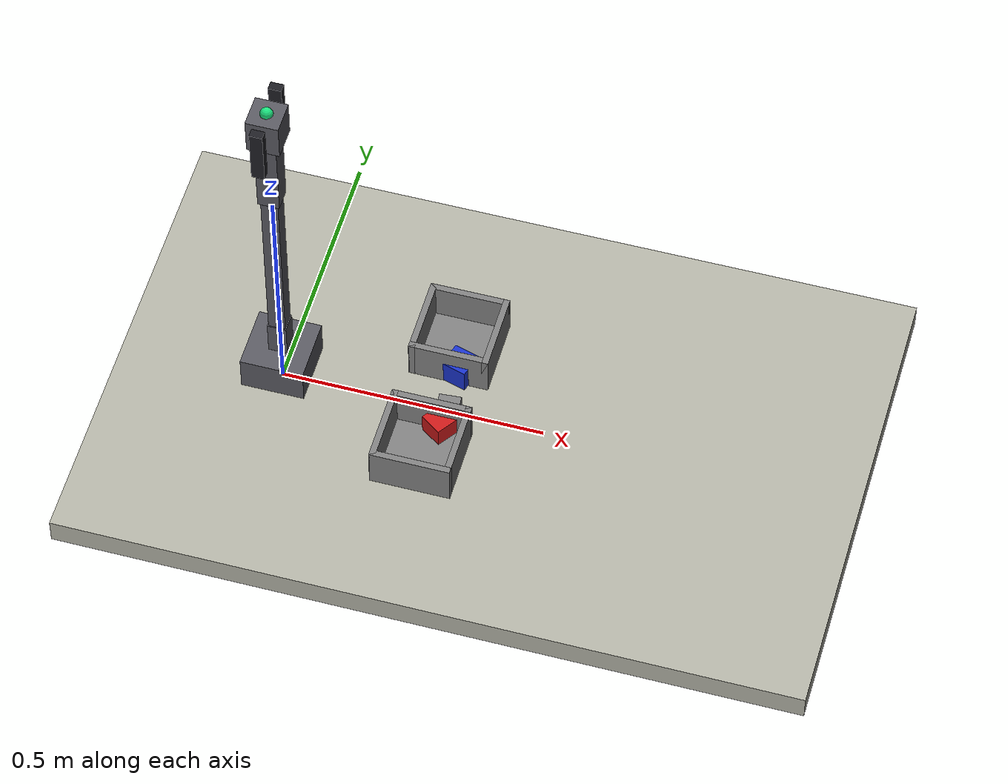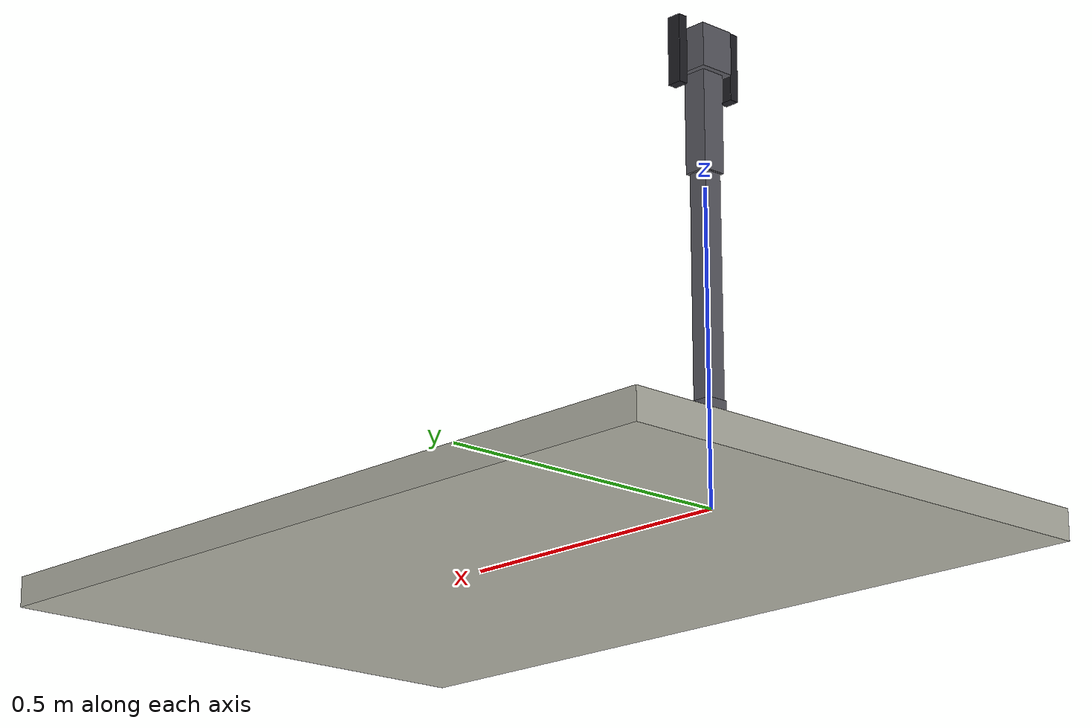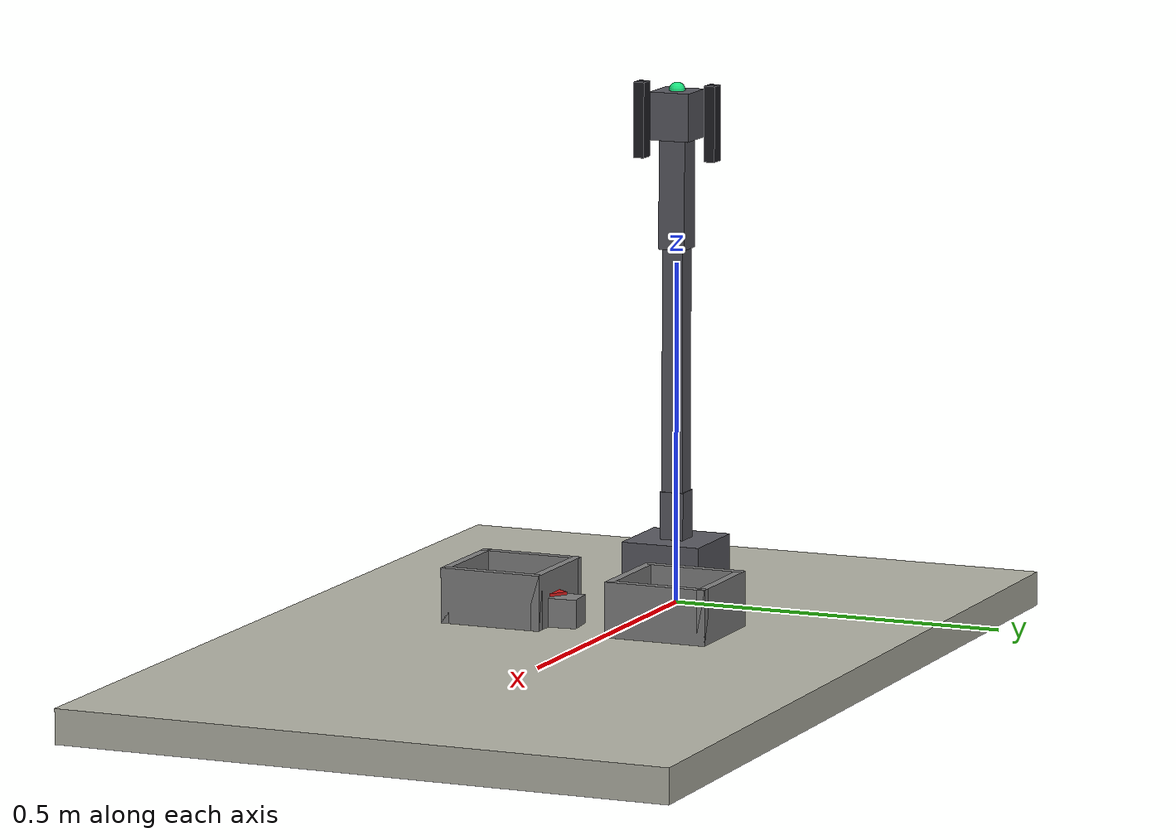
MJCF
<mujoco model="Autonomous reference tabletop arm regression_scene_task_req_a_tabletop_robot_arm_that_sorts_red_and_blue_blo_stress_000">
  <compiler angle="radian" coordinate="local" />
  <option timestep="0.002" gravity="0 0 -9.81" />
  <!-- scene_set_id=scenes_task_req_a_tabletop_robot_arm_that_sorts_red_and_blue_blo_regression scene_id=regression_scene_task_req_a_tabletop_robot_arm_that_sorts_red_and_blue_blo_stress_000 -->
  <default>
    <joint damping="0.8" armature="0.01" />
    <geom friction="1 0.1 0.01" />
  </default>
  <asset>
    <material name="mat_red" rgba="0.8 0.1 0.1 1" />
    <material name="mat_blue" rgba="0.1 0.2 0.8 1" />
    <material name="mat_gray" rgba="0.5 0.5 0.5 1" />
    <material name="mat_link" rgba="0.35 0.35 0.38 1" />
  </asset>
  <worldbody>
    <light name="key" pos="0 0 2" dir="0 0 -1" />
    <geom name="table" type="box" size="0.7 0.45 0.025" pos="0.4 0 0" rgba="0.7 0.7 0.65 1" />
    <body name="base_link" pos="0.0 0.0 0.025">
      <geom name="base_link_geom" type="box" size="0.06 0.06 0.035" pos="0 0 0.035" mass="0.45" material="mat_link" />
      <body name="upper_link" pos="0.0 0.0 0.07">
        <joint name="base_yaw" type="hinge" axis="0.0 0.0 1.0" pos="0 0 0" limited="true" range="-3.14 3.14" />
        <geom name="upper_link_geom" type="box" size="0.018 0.018 0.035" pos="0 0 0.035" mass="0.22" material="mat_link" />
        <body name="forearm_link" pos="0.0 0.0 0.07">
          <joint name="shoulder_pitch" type="hinge" axis="0.0 1.0 0.0" pos="0 0 0" limited="true" range="-1.57 1.57" />
          <geom name="forearm_link_geom" type="box" size="0.016 0.016 0.1785" pos="0 0 0.1785" mass="0.18" material="mat_link" />
          <body name="wrist_link" pos="0.0 0.0 0.357">
            <joint name="elbow_pitch" type="hinge" axis="0.0 1.0 0.0" pos="0 0 0" limited="true" range="-1.57 1.57" />
            <geom name="wrist_link_geom" type="box" size="0.02 0.02 0.08" pos="0 0 0.08" mass="0.035" material="mat_link" />
            <camera name="wrist_rgbd_camera" pos="0.03 0.0 0.04" xyaxes="0 -1 0 0 0 1" mode="fixed" user="0.0 0.0 0.0" />
            <body name="gripper_link" pos="0.0 0.0 0.16">
              <geom name="gripper_link_geom" type="box" size="0.03 0.03 0.035" pos="0 0 0.035" mass="0.04" material="mat_link" />
              <site name="ee_site" pos="0 0 0.07" size="0.012" rgba="0.1 0.9 0.5 1" />
              <site name="grasp_site" pos="0 0 0.015" size="0.01" rgba="1 0.7 0.1 1" />
              <body name="left_gripper_finger" pos="0 0.055 0.07">
                <joint name="left_gripper_slide" type="slide" axis="0 -1 0" limited="true" range="0 0.04" damping="2.0" />
                <geom name="left_gripper_pad" type="box" size="0.012 0.008 0.055" pos="0 0 -0.045" mass="0.025" rgba="0.12 0.12 0.14 1" friction="1.5 0.1 0.01" />
              </body>
              <body name="right_gripper_finger" pos="0 -0.055 0.07">
                <joint name="right_gripper_slide" type="slide" axis="0 1 0" limited="true" range="0 0.04" damping="2.0" />
                <geom name="right_gripper_pad" type="box" size="0.012 0.008 0.055" pos="0 0 -0.045" mass="0.025" rgba="0.12 0.12 0.14 1" friction="1.5 0.1 0.01" />
              </body>
            </body>
          </body>
        </body>
      </body>
    </body>
    <body name="obj_red_block" pos="0.3231 -0.0671 0.049" euler="0 0 0.9649">
      <freejoint name="free_red_block" />
      <geom name="red_block" type="box" size="0.023 0.023 0.023" mass="0.0649" friction="0.811 0.1 0.01" material="mat_red" />
    </body>
    <body name="obj_blue_block" pos="0.323 0.0677 0.0504" euler="0 0 -1.8511">
      <freejoint name="free_blue_block" />
      <geom name="blue_block" type="box" size="0.0244 0.0244 0.0244" mass="0.049" friction="0.869 0.1 0.01" material="mat_blue" />
    </body>
    <geom name="red_bin" type="box" size="0.07 0.07 0.004" pos="0.3045 -0.1273 0.029" material="mat_gray" />
    <geom name="red_bin_wall_px" type="box" size="0.006 0.07600000000000001 0.04" pos="0.3745 -0.1273 0.065" material="mat_gray" />
    <geom name="red_bin_wall_nx" type="box" size="0.006 0.07600000000000001 0.04" pos="0.2345 -0.1273 0.065" material="mat_gray" />
    <geom name="red_bin_wall_py" type="box" size="0.07600000000000001 0.006 0.04" pos="0.3045 -0.0573 0.065" material="mat_gray" />
    <geom name="red_bin_wall_ny" type="box" size="0.07600000000000001 0.006 0.04" pos="0.3045 -0.1973 0.065" material="mat_gray" />
    <geom name="blue_bin" type="box" size="0.07 0.07 0.004" pos="0.3049 0.1263 0.029" material="mat_gray" />
    <geom name="blue_bin_wall_px" type="box" size="0.006 0.07600000000000001 0.04" pos="0.3749 0.1263 0.065" material="mat_gray" />
    <geom name="blue_bin_wall_nx" type="box" size="0.006 0.07600000000000001 0.04" pos="0.2349 0.1263 0.065" material="mat_gray" />
    <geom name="blue_bin_wall_py" type="box" size="0.07600000000000001 0.006 0.04" pos="0.3049 0.1963 0.065" material="mat_gray" />
    <geom name="blue_bin_wall_ny" type="box" size="0.07600000000000001 0.006 0.04" pos="0.3049 0.0563 0.065" material="mat_gray" />
    <body name="obj_distractor_0_0" pos="0.3286 -0.0308 0.0468" euler="0 0 1.6546">
      <freejoint name="free_distractor_0_0" />
      <geom name="distractor_0_0" type="box" size="0.0208 0.0208 0.0208" mass="0.054" friction="0.948 0.1 0.01" material="mat_gray" />
    </body>
  </worldbody>
  <actuator>
    <motor name="base_yaw_motor" joint="base_yaw" gear="1" forcerange="-12.0 12.0" />
    <motor name="shoulder_pitch_motor" joint="shoulder_pitch" gear="1" forcerange="-12.0 12.0" />
    <motor name="elbow_pitch_motor" joint="elbow_pitch" gear="1" forcerange="-12.0 12.0" />
    <motor name="left_gripper_slide_motor" joint="left_gripper_slide" gear="1" forcerange="-25 25" />
    <motor name="right_gripper_slide_motor" joint="right_gripper_slide" gear="1" forcerange="-25 25" />
  </actuator>
  <sensor>
    <framepos name="wrist_rgbd_camera_pose" objtype="camera" objname="wrist_rgbd_camera" />
    <framequat name="wrist_rgbd_camera_orientation" objtype="camera" objname="wrist_rgbd_camera" />
  </sensor>
</mujoco>
